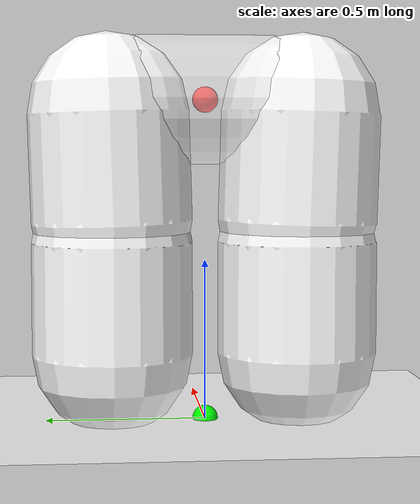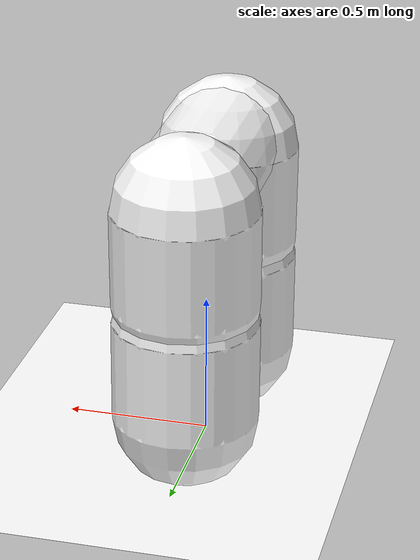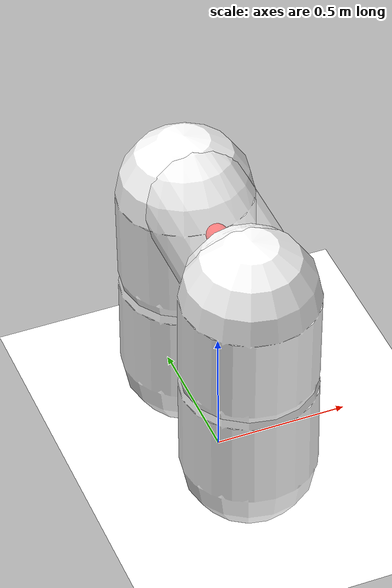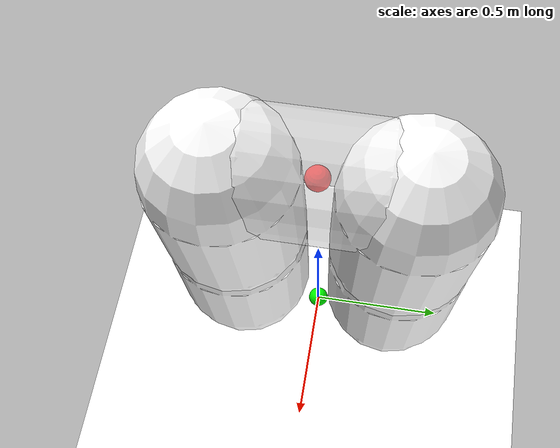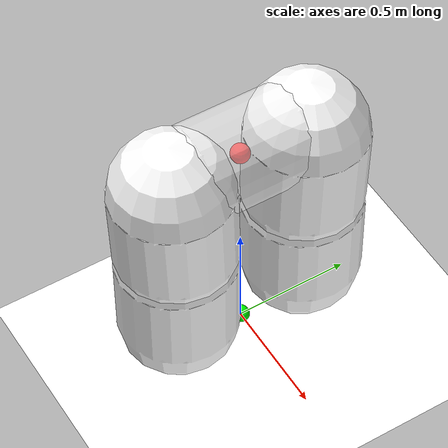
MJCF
<?xml version="1.0" ?>
<!-- This is the main XML file that defines a humanoid robot model in MuJoCo physics simulator -->
<mujoco model="Humanoid">
  <!-- Basic settings for how angles are measured and physics are calculated -->
  <!-- calculating intertia from the geometry of the body parts-->
  <compiler angle="degree" inertiafromgeom="true" coordinate="local"/>

  <!-- Default settings for all joints and body parts -->
  <default>
    <!-- Joint settings: how stiff and damped the joints are, and that the joints are limited in degrees -->
    <joint armature="1" damping="5" limited="true"/>
    <!-- Physical properties for all geometric shapes (body parts) -->
    <geom conaffinity="1" condim="3" contype="1" margin="0.001" rgba="1 1 1 1" material="body"/>
    <!-- Motor settings with default kp value -->
    <motor ctrllimited="true" ctrlrange="-1 1"/>

    <!-- Default position controller (fallback) -->
    <position kp="35"/>

    <!-- Knee-specific position controller -->
    <default class="knee_position">
      <position kp="35"/>
    </default>

    <!-- Hip-specific position controller -->
    <default class="hip_position">
      <position kp="35"/>
    </default>

    <!-- Joint stiffness class for specific joint settings -->
    <default class="joint_stiffness">
      <joint stiffness="1000" damping="200"/>  <!-- Default values for all joints -->
    </default>
  </default>

  <!-- Sets how often the physics simulation updates (every 0.005 seconds) -->
  <option timestep="0.005"/>

  <!-- Visual settings for how the simulation looks -->
  <visual>
    <!-- Main camera view settings:
         - znear/zfar: Defines how close and far the camera can see (0.1 to 2000 units)
         - Like setting the minimum and maximum viewing distance -->
    <map znear="0.1" zfar="2000"/>
    <!-- Adds a slight haze effect to the background -->
    <rgba haze="0.15 0.25 0.35 1"/>
    <!-- Sets the quality of shadows -->
    <quality shadowsize="4096"/>
    <global offwidth="2560" offheight="1440" elevation="-20" azimuth="120"/>
    <!-- Sets the size of various visual indicators -->
    <scale forcewidth="0.1" contactwidth="0.1" contactheight="0.1" connect="0.1" com="0.1"/>
  </visual>

  <!-- Sets the size of the visible workspace -->
  <statistic extent="50" center="0 0 1"/>

  <!-- Defines visual assets like textures and materials -->
  <asset>
    <!-- Creates a gradient skybox background -->
    <texture type="skybox" builtin="gradient" rgb1="0.3 0.5 0.7" rgb2="0 0 0" width="512" height="512"/>
    <!-- Creates a checkered floor texture -->
    <texture name="texplane" type="2d" builtin="checker" rgb1=".2 .3 .4" rgb2=".1 0.15 0.2" width="512" height="512" mark="cross" markrgb=".8 .8 .8"/>
    <!-- Defines materials using the textures -->
    <material name="floor" texture="texplane" texuniform="true"/>
    <material name="body" rgba="1 1 1 1"/>
  </asset>

  <!-- The main body of the robot and the world -->
  <worldbody>
    <!-- Adds a light source -->
    <light diffuse=".5 .5 .5" pos="0 0 3" dir="0 0 -1"/>
    <!-- Creates the floor -->
    <geom name="floor" pos="0 0 0" size="50 50 .125" type="plane" material="floor" condim="3" friction="1.0 0.1 0.01"/>

    <!-- Site for overall COM visualization -->
    <site name="overall_com" pos="0 0 1" size="0.04" rgba="1 0 0 1" type="sphere"/>
    <!-- Site for ZMP visualization -->
    <site name="zmp" pos="0 0 0.001" size="0.04" rgba="0 1 0 1" type="sphere"/>

    <!-- Main torso of the robot (unified body) -->
    <body name="torso" pos="0 0 1.0">
      <!-- Allows the torso to move freely in all directions -->
      <freejoint name="root"/>
      <!-- Creates the torso geometry -->
      <geom name="torso" type="capsule" fromto="0 -.21 0 0 .21 0" size="0.2" mass="16" rgba="1 1 1 0.5" friction="1.0 0.1 0.01"/>
      <camera name="track" mode="fixed" pos="0 -15 5" zaxis="0 0 1"/>

      <!-- Right leg assembly -->
      <!-- postion is relative to the parent body -->
      <body name="thigh_right" pos="0 -0.3 -0.04">
        <joint name="hip_x_right" axis="1 0 0" range="-180 180" pos="0 0 0" class="joint_stiffness"/>
        <joint name="hip_y_right" axis="0 1 0" range="-180 180" pos="0 0 0" class="joint_stiffness"/>
        <!-- Right thigh geometry -->
        <geom name="thigh_right" type="capsule" fromto="0 0 0 0 0.01 -0.34" size="0.25" mass="4.5" rgba="1 1 1 1" friction="1.0 0.1 0.01"/>

        <!-- Right shin (lower leg) -->
        <body name="shin_right" pos="0 0.01 -0.403">
          <!-- Knee joint (originally -160° to 2°) -->
          <joint name="knee_right" pos="0 0 .02" axis="0 -1 0" range="-180 180" class="joint_stiffness"/>
          <!-- Right shin geometry -->
          <geom name="shin_right" type="capsule" fromto="0 0 0 0 0 -0.35" size="0.25" mass="2.5" rgba="1 1 1 1" friction="1.0 0.1 0.01" condim="6"/>
        </body>
      </body>

      <!-- Left leg assembly (mirror of right leg) -->
      <body name="thigh_left" pos="0 0.3 -0.04">
        <joint name="hip_x_left" axis="-1 0 0" range="-180 180" pos="0 0 0" class="joint_stiffness"/>
        <joint name="hip_y_left" axis="0 1 0" range="-180 180" pos="0 0 0" class="joint_stiffness"/>
        <!-- Left thigh geometry -->
        <geom name="thigh_left" type="capsule" fromto="0 0 0 0 -0.01 -0.34" size="0.25" mass="4.5" rgba="1 1 1 1" friction="1.0 0.1 0.01"/>

        <!-- Left shin (lower leg) -->
        <body name="shin_left" pos="0 -0.01 -0.403">
          <!-- Knee joint (originally -160° to 2°) -->
          <joint name="knee_left" pos="0 0 .02" axis="0 -1 0" range="-180 180" class="joint_stiffness"/>
          <!-- Left shin geometry -->
          <geom name="shin_left" type="capsule" fromto="0 0 0 0 0 -0.35" size="0.25" mass="2.5" rgba="1 1 1 1" friction="1.0 0.1 0.01" condim="6"/>
        </body>
      </body>
    </body>
  </worldbody>

  <actuator>
    <!-- Position controllers for right leg with full ±180° range -->
    <position name="hip_x_right" joint="hip_x_right" ctrlrange="-180 180" class="hip_position"/>
    <position name="hip_y_right" joint="hip_y_right" ctrlrange="-180 180" class="hip_position"/>
    <position name="knee_right"  joint="knee_right"  ctrlrange="-180 180" class="knee_position"/>

    <!-- Position controllers for left leg with full ±180° range -->
    <position name="hip_x_left"  joint="hip_x_left"  ctrlrange="-180 180" class="hip_position"/>
    <position name="hip_y_left"  joint="hip_y_left"  ctrlrange="-180 180" class="hip_position"/>
    <position name="knee_left"   joint="knee_left"   ctrlrange="-180 180" class="knee_position"/>
  </actuator>

  <!-- Sensors for ZMP calculation -->
  <sensor>
    <!-- Subtree sensors for whole robot dynamics -->
    <subtreecom name="subtreecom" body="torso"/>
    <subtreelinvel name="subtreelinvel" body="torso"/>
    <subtreeangmom name="subtreeangmom" body="torso"/>
  </sensor>

</mujoco>
